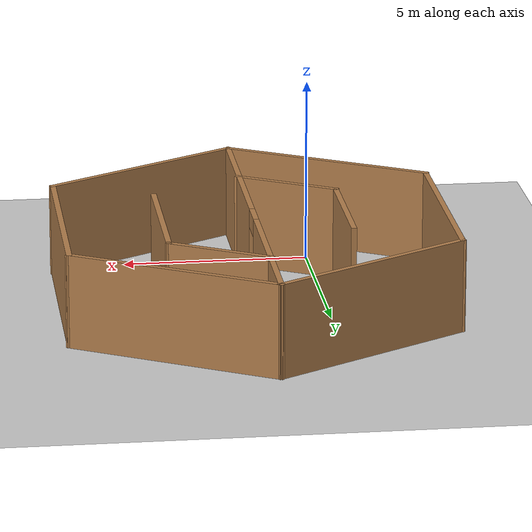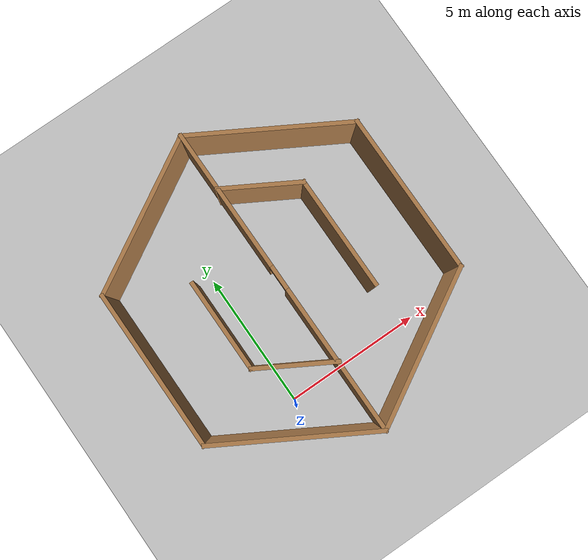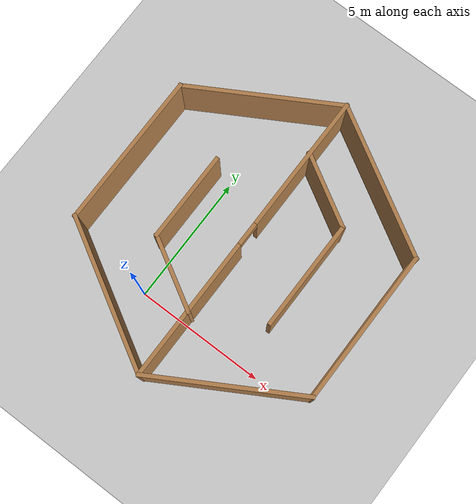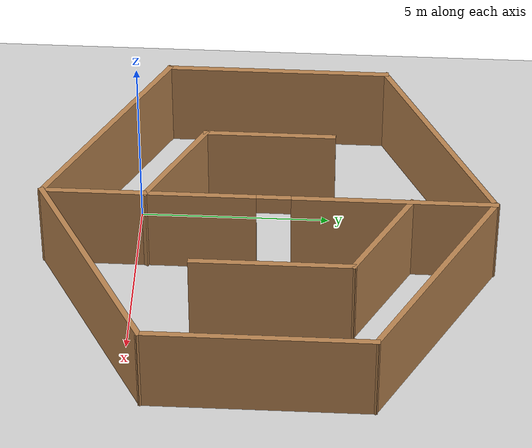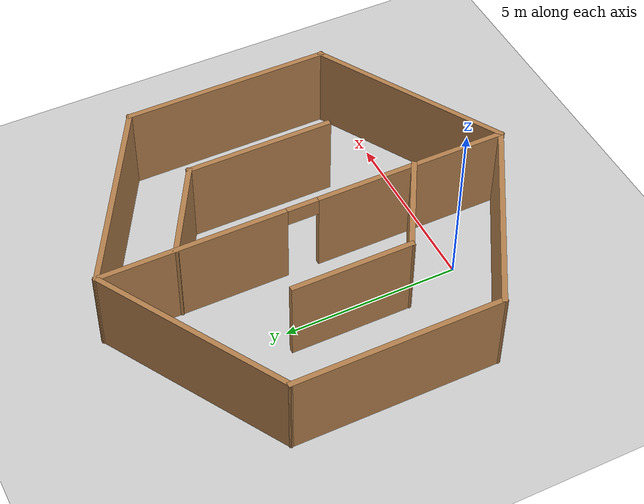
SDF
<sdf version="1.7">
 <world name="default">
  <light name="sun" type="directional">
   <pose>0 0 10 0 -0 0</pose>
   <diffuse>0.8 0.8 0.8 1</diffuse>
   <specular>0.2 0.2 0.2 1</specular>
   <attenuation>
    <range>1000</range>
    <constant>0.9</constant>
    <linear>0.01</linear>
    <quadratic>0.001</quadratic>
   </attenuation>
   <direction>-0.5 0.1 -0.9</direction>
   <spot><inner_angle>0</inner_angle><outer_angle>0</outer_angle><falloff>0</falloff></spot>
  </light>
  <model name="ground_plane">
   <static>1</static>
   <link name="link">
    <collision name="collision">
     <geometry><plane><normal>0 0 1</normal><size>100 100</size></plane></geometry>
     <surface>
      <contact><collide_bitmask>65535</collide_bitmask></contact>
      <friction><ode><mu>100</mu><mu2>50</mu2></ode></friction>
     </surface>
    </collision>
    <visual name="visual">
     <cast_shadows>0</cast_shadows>
     <geometry><plane><normal>0 0 1</normal><size>100 100</size></plane></geometry>
     <material>
      <script><uri>file://media/materials/scripts/gazebo.material</uri><name>Gazebo/Grey</name></script>
     </material>
    </visual>
   </link>
  </model>
  <gravity>0 0 -9.8</gravity>
  <magnetic_field>6e-06 2.3e-05 -4.2e-05</magnetic_field>
  <atmosphere type="adiabatic"/>
  <physics type="ode">
   <max_step_size>0.001</max_step_size>
   <real_time_factor>1</real_time_factor>
   <real_time_update_rate>1000</real_time_update_rate>
  </physics>
  <scene><ambient>0.4 0.4 0.4 1</ambient><background>0.7 0.7 0.7 1</background><shadows>1</shadows></scene>
  <spherical_coordinates>
   <surface_model>EARTH_WGS84</surface_model>
   <latitude_deg>0</latitude_deg>
   <longitude_deg>0</longitude_deg>
   <elevation>0</elevation>
   <heading_deg>0</heading_deg>
  </spherical_coordinates>
  <model name="Untitled">
   <pose>1.87521 3.47796 0 0 -0 0</pose>
   <link name="Wall_0">
    <collision name="Wall_0_Collision">
     <geometry><box><size>6 0.15 2.5</size></box></geometry>
     <pose>0 0 1.25 0 -0 0</pose>
    </collision>
    <visual name="Wall_0_Visual">
     <pose>0 0 1.25 0 -0 0</pose>
     <geometry><box><size>6 0.15 2.5</size></box></geometry>
     <material>
      <script><uri>file://media/materials/scripts/gazebo.material</uri><name>Gazebo/Wood</name></script>
      <ambient>1 1 1 1</ambient>
     </material>
     <meta><layer>0</layer></meta>
    </visual>
    <pose>-2.53312 -4.3875 0 0 -0 2.61799</pose>
   </link>
   <link name="Wall_1">
    <collision name="Wall_1_Collision">
     <geometry><box><size>6 0.15 2.5</size></box></geometry>
     <pose>0 0 1.25 0 -0 0</pose>
    </collision>
    <visual name="Wall_1_Visual">
     <pose>0 0 1.25 0 -0 0</pose>
     <geometry><box><size>6 0.15 2.5</size></box></geometry>
     <material>
      <script><uri>file://media/materials/scripts/gazebo.material</uri><name>Gazebo/Wood</name></script>
      <ambient>1 1 1 1</ambient>
     </material>
     <meta><layer>0</layer></meta>
    </visual>
    <pose>-5.06625 0 0 0 -0 1.5708</pose>
   </link>
   <link name="Wall_12">
    <collision name="Wall_12_Collision">
     <geometry><box><size>3 0.15 2.5</size></box></geometry>
     <pose>0 0 1.25 0 -0 0</pose>
    </collision>
    <visual name="Wall_12_Visual">
     <pose>0 0 1.25 0 -0 0</pose>
     <geometry><box><size>3 0.15 2.5</size></box></geometry>
     <material>
      <script><uri>file://media/materials/scripts/gazebo.material</uri><name>Gazebo/Wood</name></script>
      <ambient>1 1 1 1</ambient>
     </material>
     <meta><layer>0</layer></meta>
    </visual>
    <pose>-1.2033 -2.47799 0 0 -0 2.61799</pose>
   </link>
   <link name="Wall_13">
    <collision name="Wall_13_Collision">
     <geometry><box><size>3.5 0.15 2.5</size></box></geometry>
     <pose>0 0 1.25 0 -0 0</pose>
    </collision>
    <visual name="Wall_13_Visual">
     <pose>0 0 1.25 0 -0 0</pose>
     <geometry><box><size>3.5 0.15 2.5</size></box></geometry>
     <material>
      <script><uri>file://media/materials/scripts/gazebo.material</uri><name>Gazebo/Wood</name></script>
      <ambient>1 1 1 1</ambient>
     </material>
     <meta><layer>0</layer></meta>
    </visual>
    <pose>-2.43738 -0.09049 0 0 -0 1.5708</pose>
   </link>
   <link name="Wall_15">
    <collision name="Wall_15_Collision">
     <geometry><box><size>3 0.15 2.5</size></box></geometry>
     <pose>0 0 1.25 0 -0 0</pose>
    </collision>
    <visual name="Wall_15_Visual">
     <pose>0 0 1.25 0 -0 0</pose>
     <geometry><box><size>3 0.15 2.5</size></box></geometry>
     <material>
      <script><uri>file://media/materials/scripts/gazebo.material</uri><name>Gazebo/Wood</name></script>
      <ambient>1 1 1 1</ambient>
     </material>
     <meta><layer>0</layer></meta>
    </visual>
    <pose>1.21861 2.98993 0 0 -0 -0.523599</pose>
   </link>
   <link name="Wall_16">
    <collision name="Wall_16_Collision">
     <geometry><box><size>4.25 0.15 2.5</size></box></geometry>
     <pose>0 0 1.25 0 -0 0</pose>
    </collision>
    <visual name="Wall_16_Visual">
     <pose>0 0 1.25 0 -0 0</pose>
     <geometry><box><size>4.25 0.15 2.5</size></box></geometry>
     <material>
      <script><uri>file://media/materials/scripts/gazebo.material</uri><name>Gazebo/Wood</name></script>
      <ambient>1 1 1 1</ambient>
     </material>
     <meta><layer>0</layer></meta>
    </visual>
    <pose>2.4527 0.227432 0 0 -0 -1.5708</pose>
   </link>
   <link name="Wall_2">
    <collision name="Wall_2_Collision">
     <geometry><box><size>6 0.15 2.5</size></box></geometry>
     <pose>0 0 1.25 0 -0 0</pose>
    </collision>
    <visual name="Wall_2_Visual">
     <pose>0 0 1.25 0 -0 0</pose>
     <geometry><box><size>6 0.15 2.5</size></box></geometry>
     <material>
      <script><uri>file://media/materials/scripts/gazebo.material</uri><name>Gazebo/Wood</name></script>
      <ambient>1 1 1 1</ambient>
     </material>
     <meta><layer>0</layer></meta>
    </visual>
    <pose>-2.53312 4.3875 0 0 -0 0.523599</pose>
   </link>
   <link name="Wall_5">
    <collision name="Wall_5_Collision">
     <geometry><box><size>6 0.15 2.5</size></box></geometry>
     <pose>0 0 1.25 0 -0 0</pose>
    </collision>
    <visual name="Wall_5_Visual">
     <pose>0 0 1.25 0 -0 0</pose>
     <geometry><box><size>6 0.15 2.5</size></box></geometry>
     <material>
      <script><uri>file://media/materials/scripts/gazebo.material</uri><name>Gazebo/Wood</name></script>
      <ambient>1 1 1 1</ambient>
     </material>
     <meta><layer>0</layer></meta>
    </visual>
    <pose>2.53312 -4.3875 0 0 -0 0.523599</pose>
   </link>
   <link name="Wall_6">
    <collision name="Wall_6_Collision">
     <geometry><box><size>6 0.15 2.5</size></box></geometry>
     <pose>0 0 1.25 0 -0 0</pose>
    </collision>
    <visual name="Wall_6_Visual">
     <pose>0 0 1.25 0 -0 0</pose>
     <geometry><box><size>6 0.15 2.5</size></box></geometry>
     <material>
      <script><uri>file://media/materials/scripts/gazebo.material</uri><name>Gazebo/Wood</name></script>
      <ambient>1 1 1 1</ambient>
     </material>
     <meta><layer>0</layer></meta>
    </visual>
    <pose>5.06625 0 0 0 -0 1.5708</pose>
   </link>
   <link name="Wall_7">
    <collision name="Wall_7_Collision">
     <geometry><box><size>6 0.15 2.5</size></box></geometry>
     <pose>0 0 1.25 0 -0 0</pose>
    </collision>
    <visual name="Wall_7_Visual">
     <pose>0 0 1.25 0 -0 0</pose>
     <geometry><box><size>6 0.15 2.5</size></box></geometry>
     <material>
      <script><uri>file://media/materials/scripts/gazebo.material</uri><name>Gazebo/Wood</name></script>
      <ambient>1 1 1 1</ambient>
     </material>
     <meta><layer>0</layer></meta>
    </visual>
    <pose>2.53312 4.3875 0 0 -0 2.61799</pose>
   </link>
   <link name="Wall_8">
    <pose>0 0.05 0 0 -0 -1.5708</pose>
    <visual name="Wall_8_Visual_0">
     <pose>-3.20766 0 1.25 0 -0 0</pose>
     <geometry><box><size>5.33468 0.15 2.5</size></box></geometry>
     <material>
      <script><uri>file://media/materials/scripts/gazebo.material</uri><name>Gazebo/Wood</name></script>
      <ambient>1 1 1 1</ambient>
     </material>
     <meta><layer>0</layer></meta>
    </visual>
    <collision name="Wall_8_Collision_0">
     <geometry><box><size>5.33468 0.15 2.5</size></box></geometry>
     <pose>-3.20766 0 1.25 0 -0 0</pose>
    </collision>
    <visual name="Wall_8_Visual_1">
     <pose>3.11734 0 1.25 0 -0 0</pose>
     <geometry><box><size>5.51532 0.15 2.5</size></box></geometry>
     <material>
      <script><uri>file://media/materials/scripts/gazebo.material</uri><name>Gazebo/Wood</name></script>
      <ambient>1 1 1 1</ambient>
     </material>
     <meta><layer>0</layer></meta>
    </visual>
    <collision name="Wall_8_Collision_1">
     <geometry><box><size>5.51532 0.15 2.5</size></box></geometry>
     <pose>3.11734 0 1.25 0 -0 0</pose>
    </collision>
    <visual name="Wall_8_Visual_2">
     <pose>-0.090318 0 2.25 0 -0 0</pose>
     <geometry><box><size>0.9 0.15 0.5</size></box></geometry>
     <material>
      <script><uri>file://media/materials/scripts/gazebo.material</uri><name>Gazebo/Wood</name></script>
      <ambient>1 1 1 1</ambient>
     </material>
     <meta><layer>0</layer></meta>
    </visual>
    <collision name="Wall_8_Collision_2">
     <geometry><box><size>0.9 0.15 0.5</size></box></geometry>
     <pose>-0.090318 0 2.25 0 -0 0</pose>
    </collision>
   </link>
   <static>1</static>
  </model>
 </world>
</sdf>
